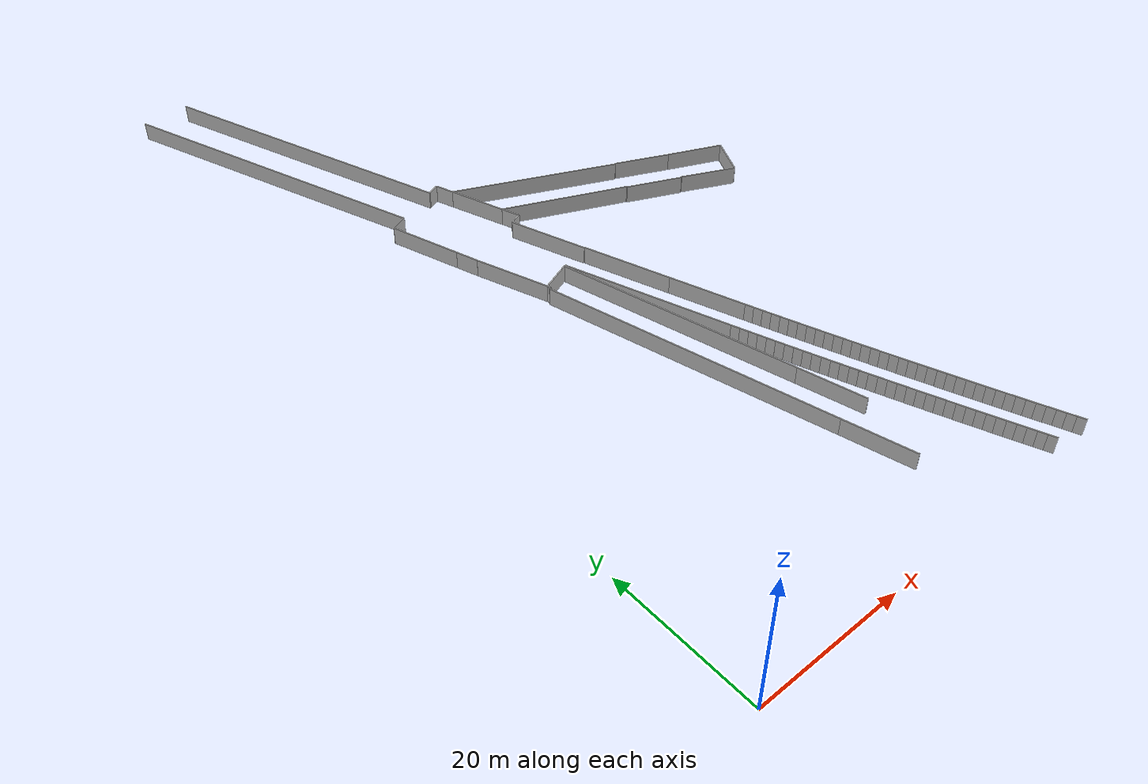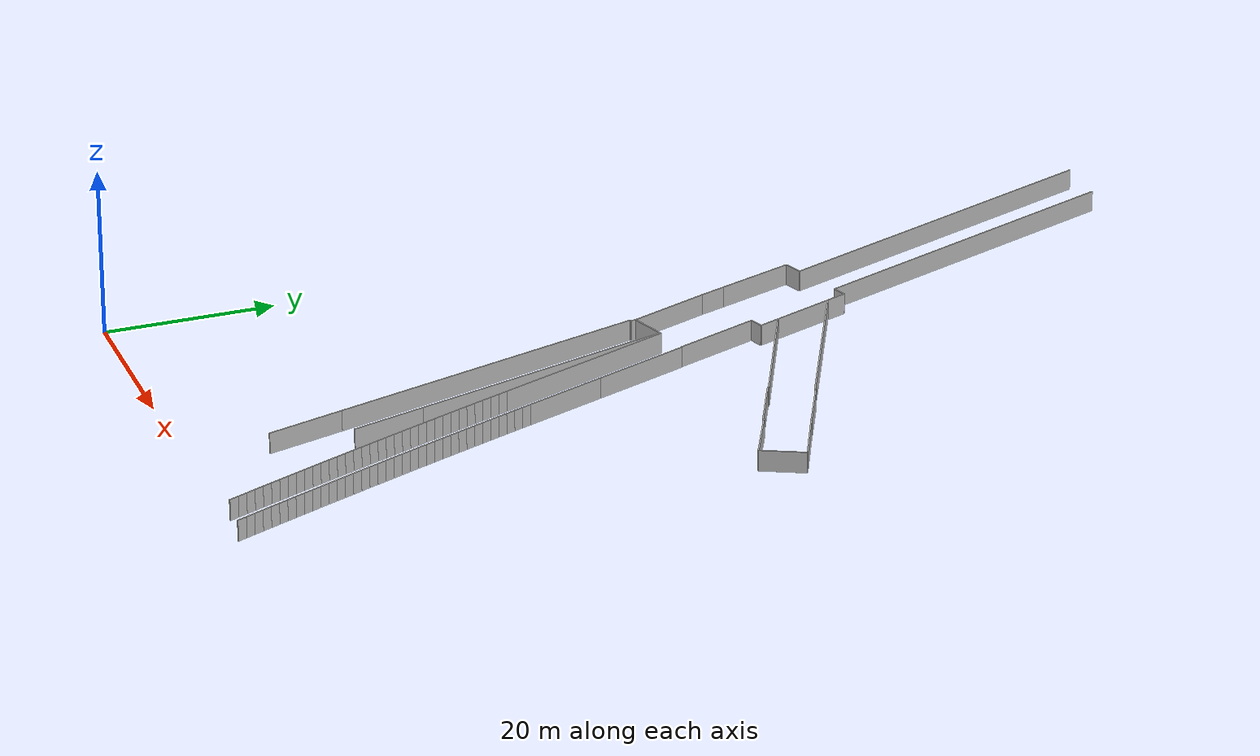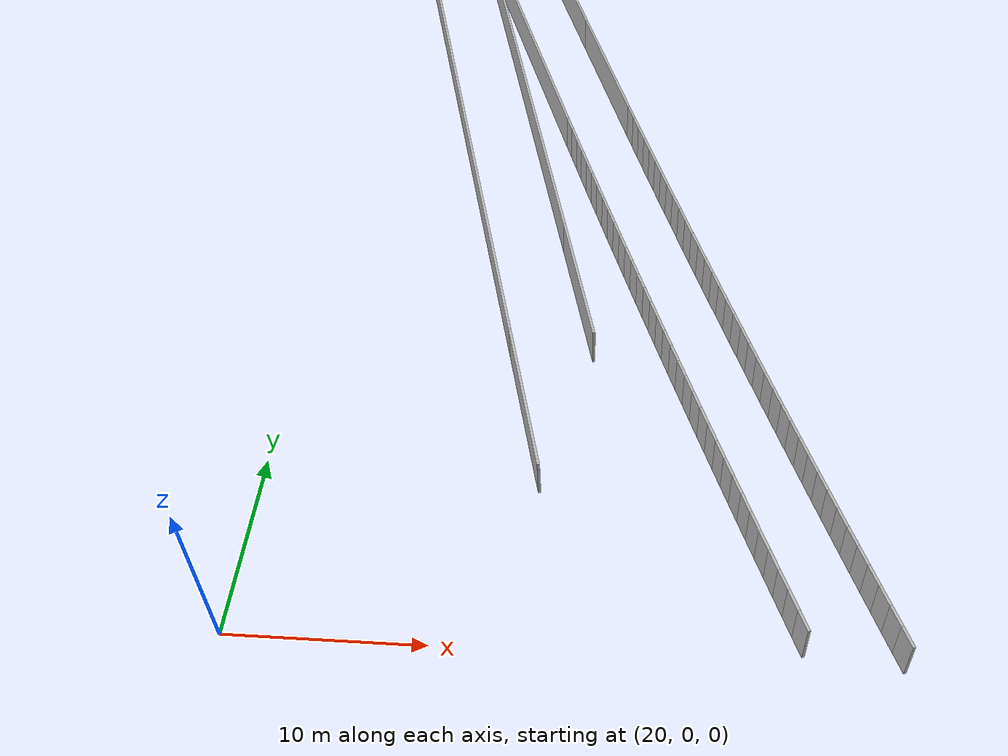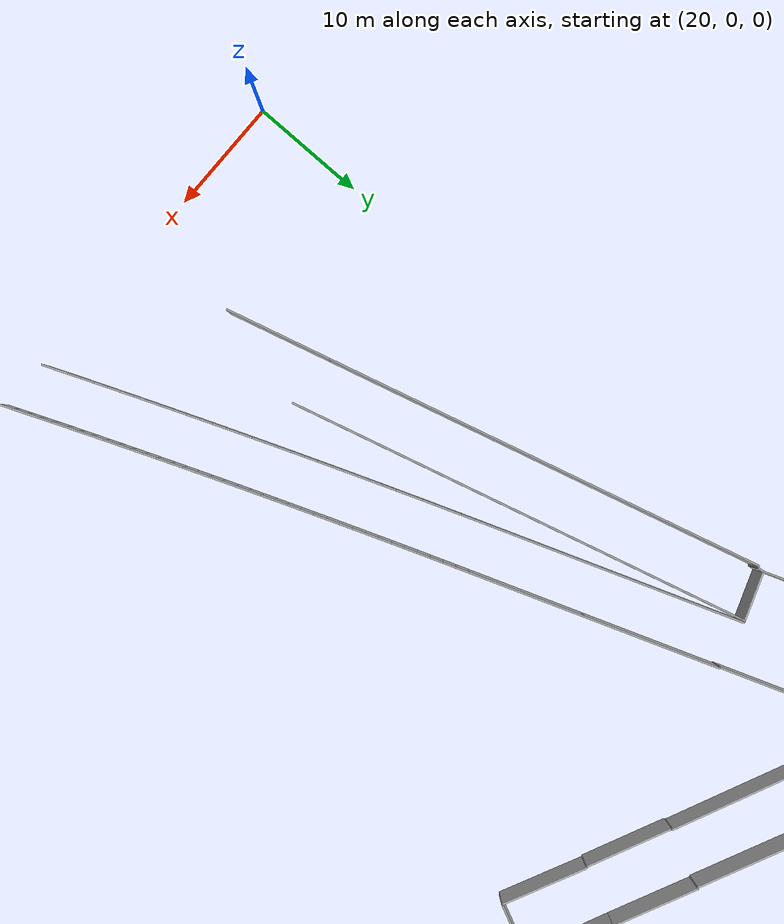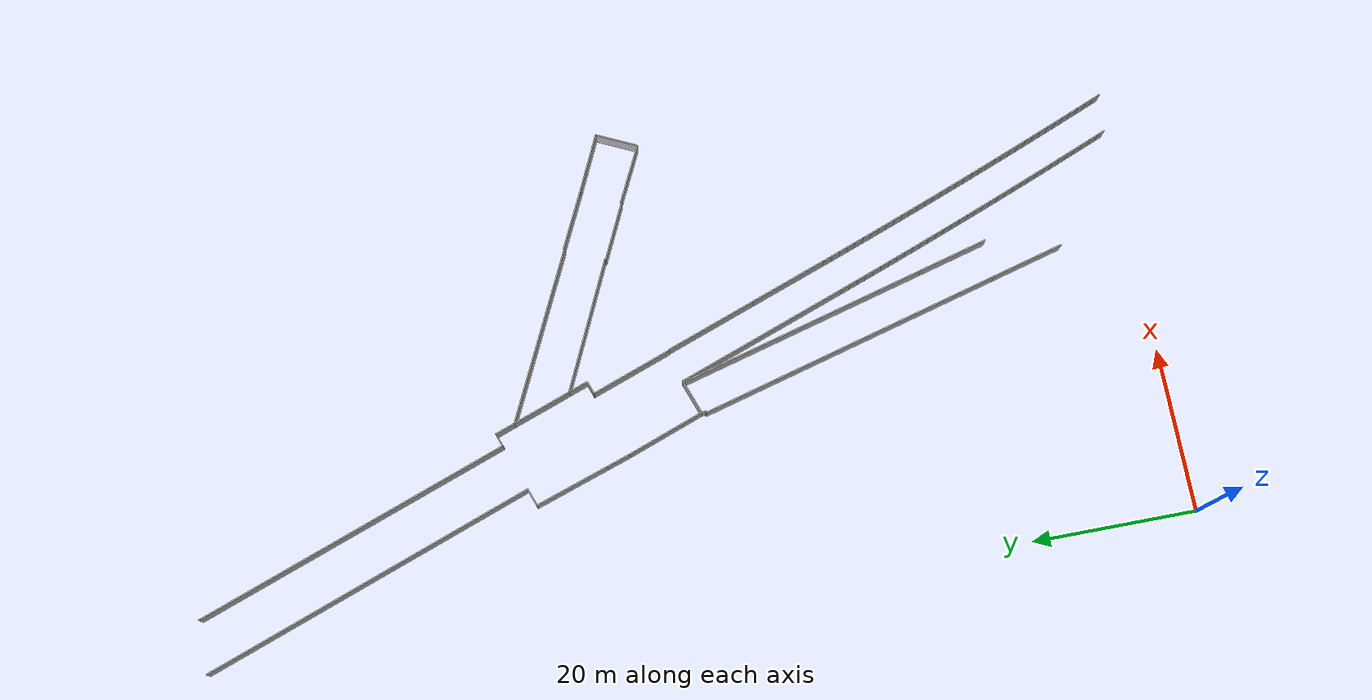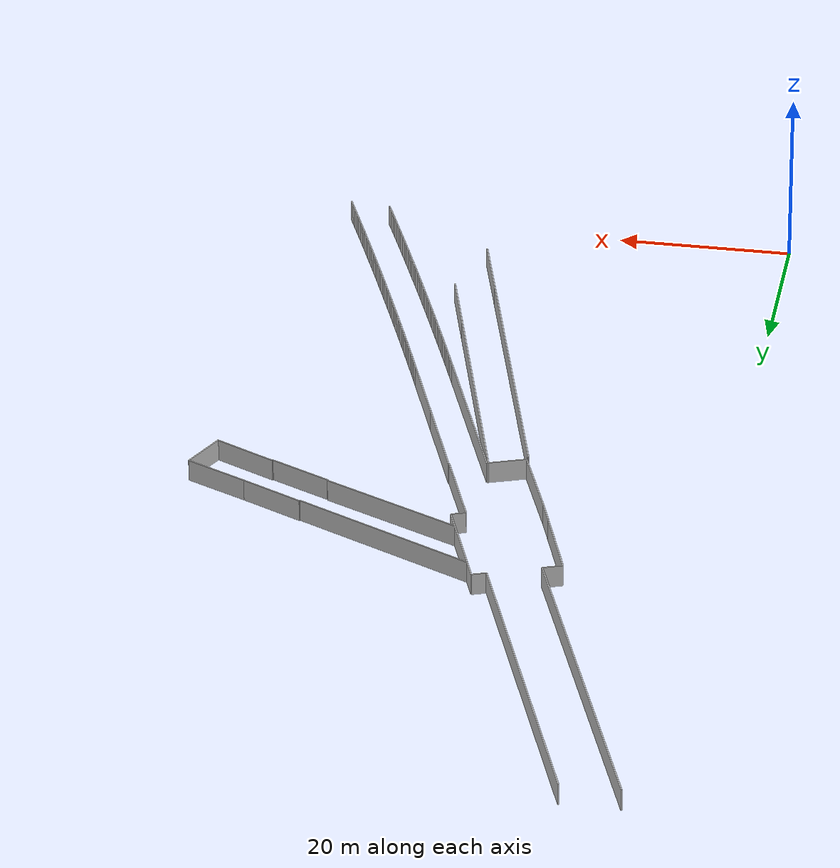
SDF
<sdf version="1.6">
 <model name="sps_0208">
  <static>1</static>
  <allow_auto_disable>0</allow_auto_disable>
  <link name="Wall0">
   <collision name="collision"><geometry><box><size>22.2248 0.15 2.5</size></box></geometry></collision>
   <visual name="visual">
    <geometry><box><size>22.2248 0.15 2.5</size></box></geometry>
    <transparency>0.0</transparency>
   </visual>
   <pose>30.1934 46.7419 1.25 0 -0 1.91495</pose>
  </link>
  <link name="Wall86">
   <collision name="collision"><geometry><box><size>0.0706437 0.15 2.5</size></box></geometry></collision>
   <visual name="visual">
    <geometry><box><size>0.0706437 0.15 2.5</size></box></geometry>
    <transparency>0.0</transparency>
   </visual>
   <pose>30.4767 58.1172 1.25 0 -0 0.355636</pose>
  </link>
  <link name="Wall87">
   <collision name="collision"><geometry><box><size>11.7364 0.15 2.5</size></box></geometry></collision>
   <visual name="visual">
    <geometry><box><size>11.7364 0.15 2.5</size></box></geometry>
    <transparency>0.0</transparency>
   </visual>
   <pose>32.4896 52.6053 1.25 0 0 -1.22667</pose>
  </link>
  <link name="Wall88">
   <collision name="collision"><geometry><box><size>9.98642 0.15 2.5</size></box></geometry></collision>
   <visual name="visual">
    <geometry><box><size>9.98642 0.15 2.5</size></box></geometry>
    <transparency>0.0</transparency>
   </visual>
   <pose>36.154 42.3808 1.25 0 0 -1.22667</pose>
  </link>
  <link name="Wall170">
   <collision name="collision"><geometry><box><size>1.64998 0.15 2.5</size></box></geometry></collision>
   <visual name="visual">
    <geometry><box><size>1.64998 0.15 2.5</size></box></geometry>
    <transparency>0.0</transparency>
   </visual>
   <pose>23.4925 79.9408 1.25 0 -0 0.343838</pose>
  </link>
  <link name="Wall171">
   <collision name="collision"><geometry><box><size>2.49963 0.15 2.5</size></box></geometry></collision>
   <visual name="visual">
    <geometry><box><size>2.49963 0.15 2.5</size></box></geometry>
    <transparency>0.0</transparency>
   </visual>
   <pose>24.6911 79.0424 1.25 0 0 -1.22654</pose>
  </link>
  <link name="Wall263">
   <collision name="collision"><geometry><box><size>2.24921 0.15 2.5</size></box></geometry></collision>
   <visual name="visual">
    <geometry><box><size>2.24921 0.15 2.5</size></box></geometry>
    <transparency>0.0</transparency>
   </visual>
   <pose>16.0085 77.2574 1.25 0 -0 0.34457</pose>
  </link>
  <link name="Wall264">
   <collision name="collision"><geometry><box><size>42.7635 0.15 2.5</size></box></geometry></collision>
   <visual name="visual">
    <geometry><box><size>42.7635 0.15 2.5</size></box></geometry>
    <transparency>0.0</transparency>
   </visual>
   <pose>9.85269 97.7652 1.25 0 -0 1.91496</pose>
  </link>
  <link name="Wall267">
   <collision name="collision"><geometry><box><size>40.6042 0.15 2.5</size></box></geometry></collision>
   <visual name="visual">
    <geometry><box><size>40.6042 0.15 2.5</size></box></geometry>
    <transparency>0.0</transparency>
   </visual>
   <pose>15.8759 98.7779 1.25 0 0 -1.22716</pose>
  </link>
  <link name="Wall268">
   <collision name="collision"><geometry><box><size>1.65028 0.15 2.5</size></box></geometry></collision>
   <visual name="visual">
    <geometry><box><size>1.65028 0.15 2.5</size></box></geometry>
    <transparency>0.0</transparency>
   </visual>
   <pose>27.7107 68.1739 1.25 0 0 -2.79692</pose>
  </link>
  <link name="Wall273">
   <collision name="collision"><geometry><box><size>8.81616 0.15 2.5</size></box></geometry></collision>
   <visual name="visual">
    <geometry><box><size>8.81616 0.15 2.5</size></box></geometry>
    <transparency>0.0</transparency>
   </visual>
   <pose>35.6053 22.1523 1.25 0 -0 1.83141</pose>
  </link>
  <link name="Wall274">
   <collision name="collision"><geometry><box><size>31.8043 0.15 2.5</size></box></geometry></collision>
   <visual name="visual">
    <geometry><box><size>31.8043 0.15 2.5</size></box></geometry>
    <transparency>0.0</transparency>
   </visual>
   <pose>30.3719 41.7767 1.25 0 -0 1.83141</pose>
  </link>
  <link name="Wall327">
   <collision name="collision"><geometry><box><size>0.00213967 0.15 2.5</size></box></geometry></collision>
   <visual name="visual">
    <geometry><box><size>0.00213967 0.15 2.5</size></box></geometry>
    <transparency>0.0</transparency>
   </visual>
   <pose>26.9344 67.8941 1.25 0 0 -1.22659</pose>
  </link>
  <link name="Wall328">
   <collision name="collision"><geometry><box><size>10.3981 0.15 2.5</size></box></geometry></collision>
   <visual name="visual">
    <geometry><box><size>10.3981 0.15 2.5</size></box></geometry>
    <transparency>0.0</transparency>
   </visual>
   <pose>28.6892 62.999 1.25 0 0 -1.22659</pose>
  </link>
  <link name="Wall332">
   <collision name="collision"><geometry><box><size>9.27059 0.15 2.5</size></box></geometry></collision>
   <visual name="visual">
    <geometry><box><size>9.27059 0.15 2.5</size></box></geometry>
    <transparency>0.0</transparency>
   </visual>
   <pose>33.2761 13.414 1.25 0 -0 1.83117</pose>
  </link>
  <link name="Wall333">
   <collision name="collision"><geometry><box><size>38.5413 0.15 2.5</size></box></geometry></collision>
   <visual name="visual">
    <geometry><box><size>38.5413 0.15 2.5</size></box></geometry>
    <transparency>0.0</transparency>
   </visual>
   <pose>27.1216 36.5142 1.25 0 -0 1.83117</pose>
  </link>
  <link name="Wall491">
   <collision name="collision"><geometry><box><size>9.47192 0.15 2.5</size></box></geometry></collision>
   <visual name="visual">
    <geometry><box><size>9.47192 0.15 2.5</size></box></geometry>
    <transparency>0.0</transparency>
   </visual>
   <pose>16.4498 72.3853 1.25 0 0 -1.24857</pose>
  </link>
  <link name="Wall492">
   <collision name="collision"><geometry><box><size>3.03054 0.15 2.5</size></box></geometry></collision>
   <visual name="visual">
    <geometry><box><size>3.03054 0.15 2.5</size></box></geometry>
    <transparency>0.0</transparency>
   </visual>
   <pose>18.4294 66.4558 1.25 0 0 -1.24857</pose>
  </link>
  <link name="Wall493">
   <collision name="collision"><geometry><box><size>0.509222 0.15 2.5</size></box></geometry></collision>
   <visual name="visual">
    <geometry><box><size>0.509222 0.15 2.5</size></box></geometry>
    <transparency>0.0</transparency>
   </visual>
   <pose>22.3109 55.4548 1.25 0 -0 1.71707</pose>
  </link>
  <link name="Wall494">
   <collision name="collision"><geometry><box><size>2.49963 0.15 2.5</size></box></geometry></collision>
   <visual name="visual">
    <geometry><box><size>2.49963 0.15 2.5</size></box></geometry>
    <transparency>0.0</transparency>
   </visual>
   <pose>28.0655 69.6292 1.25 0 0 -1.22654</pose>
  </link>
  <link name="Wall592">
   <collision name="collision"><geometry><box><size>9.90103 0.15 2.5</size></box></geometry></collision>
   <visual name="visual">
    <geometry><box><size>9.90103 0.15 2.5</size></box></geometry>
    <transparency>0.0</transparency>
   </visual>
   <pose>20.5915 60.3626 1.25 0 0 -1.22407</pose>
  </link>
  <link name="Wall593">
   <collision name="collision"><geometry><box><size>0.19938 0.15 2.5</size></box></geometry></collision>
   <visual name="visual">
    <geometry><box><size>0.19938 0.15 2.5</size></box></geometry>
    <transparency>0.0</transparency>
   </visual>
   <pose>22.2543 55.1691 1.25 0 -0 0.346051</pose>
  </link>
  <link name="Wall594">
   <collision name="collision"><geometry><box><size>0.180181 0.15 2.5</size></box></geometry></collision>
   <visual name="visual">
    <geometry><box><size>0.180181 0.15 2.5</size></box></geometry>
    <transparency>0.0</transparency>
   </visual>
   <pose>26.3592 57.1723 1.25 0 0 -2.79745</pose>
  </link>
  <link name="Wall1409">
   <collision name="collision"><geometry><box><size>7.50012 0.15 2.5</size></box></geometry></collision>
   <visual name="visual">
    <geometry><box><size>7.50012 0.15 2.5</size></box></geometry>
    <transparency>0.0</transparency>
   </visual>
   <pose>26.3783 74.3358 1.25 0 -0 1.91498</pose>
  </link>
  <link name="Wall1410">
   <collision name="collision"><geometry><box><size>22.1706 0.15 2.5</size></box></geometry></collision>
   <visual name="visual">
    <geometry><box><size>22.1706 0.15 2.5</size></box></geometry>
    <transparency>0.0</transparency>
   </visual>
   <pose>35.1147 73.086 1.25 0 0 -0.445816</pose>
  </link>
  <link name="Wall1411">
   <collision name="collision"><geometry><box><size>0.100339 0.15 2.5</size></box></geometry></collision>
   <visual name="visual">
    <geometry><box><size>0.100339 0.15 2.5</size></box></geometry>
    <transparency>0.0</transparency>
   </visual>
   <pose>45.1379 68.3515 1.25 0 -0 1.13027</pose>
  </link>
  <link name="Wall1412">
   <collision name="collision"><geometry><box><size>7.50014 0.15 2.5</size></box></geometry></collision>
   <visual name="visual">
    <geometry><box><size>7.50014 0.15 2.5</size></box></geometry>
    <transparency>0.0</transparency>
   </visual>
   <pose>48.5395 66.7729 1.25 0 0 -0.447881</pose>
  </link>
  <link name="Wall1413">
   <collision name="collision"><geometry><box><size>7.50037 0.15 2.5</size></box></geometry></collision>
   <visual name="visual">
    <geometry><box><size>7.50037 0.15 2.5</size></box></geometry>
    <transparency>0.0</transparency>
   </visual>
   <pose>55.3213 63.5702 1.25 0 0 -0.434511</pose>
  </link>
  <link name="Wall1414">
   <collision name="collision"><geometry><box><size>5.30036 0.15 2.5</size></box></geometry></collision>
   <visual name="visual">
    <geometry><box><size>5.30036 0.15 2.5</size></box></geometry>
    <transparency>0.0</transparency>
   </visual>
   <pose>57.5911 59.5952 1.25 0 0 -2.01208</pose>
  </link>
  <link name="Wall1415">
   <collision name="collision"><geometry><box><size>7.5008 0.15 2.5</size></box></geometry></collision>
   <visual name="visual">
    <geometry><box><size>7.5008 0.15 2.5</size></box></geometry>
    <transparency>0.0</transparency>
   </visual>
   <pose>53.0897 58.8455 1.25 0 -0 2.68705</pose>
  </link>
  <link name="Wall1416">
   <collision name="collision"><geometry><box><size>0.100417 0.15 2.5</size></box></geometry></collision>
   <visual name="visual">
    <geometry><box><size>0.100417 0.15 2.5</size></box></geometry>
    <transparency>0.0</transparency>
   </visual>
   <pose>49.6986 60.4467 1.25 0 0 -2.01297</pose>
  </link>
  <link name="Wall1417">
   <collision name="collision"><geometry><box><size>7.50005 0.15 2.5</size></box></geometry></collision>
   <visual name="visual">
    <geometry><box><size>7.50005 0.15 2.5</size></box></geometry>
    <transparency>0.0</transparency>
   </visual>
   <pose>46.2863 62.0029 1.25 0 -0 2.70032</pose>
  </link>
  <link name="Wall1418">
   <collision name="collision"><geometry><box><size>0.100417 0.15 2.5</size></box></geometry></collision>
   <visual name="visual">
    <geometry><box><size>0.100417 0.15 2.5</size></box></geometry>
    <transparency>0.0</transparency>
   </visual>
   <pose>42.917 63.6499 1.25 0 -0 1.12862</pose>
  </link>
  <link name="Wall1419">
   <collision name="collision"><geometry><box><size>16.8668 0.15 2.5</size></box></geometry></collision>
   <visual name="visual">
    <geometry><box><size>16.8668 0.15 2.5</size></box></geometry>
    <transparency>0.0</transparency>
   </visual>
   <pose>35.291 67.2505 1.25 0 -0 2.70642</pose>
  </link>
  <link name="Wall1912">
   <collision name="collision"><geometry><box><size>0.19938 0.15 2.5</size></box></geometry></collision>
   <visual name="visual">
    <geometry><box><size>0.19938 0.15 2.5</size></box></geometry>
    <transparency>0.0</transparency>
   </visual>
   <pose>22.2543 55.1691 1.25 0 -0 0.346051</pose>
  </link>
  <link name="Wall1913">
   <collision name="collision"><geometry><box><size>0.509222 0.15 2.5</size></box></geometry></collision>
   <visual name="visual">
    <geometry><box><size>0.509222 0.15 2.5</size></box></geometry>
    <transparency>0.0</transparency>
   </visual>
   <pose>22.3109 55.4548 1.25 0 -0 1.71707</pose>
  </link>
  <link name="Wall1914">
   <collision name="collision"><geometry><box><size>4.25027 0.15 2.5</size></box></geometry></collision>
   <visual name="visual">
    <geometry><box><size>4.25027 0.15 2.5</size></box></geometry>
    <transparency>0.0</transparency>
   </visual>
   <pose>24.2741 56.4243 1.25 0 -0 0.344454</pose>
  </link>
  <link name="Wall4749">
   <collision name="collision"><geometry><box><size>1.12145 0.15 2.5</size></box></geometry></collision>
   <visual name="visual">
    <geometry><box><size>1.12145 0.15 2.5</size></box></geometry>
    <transparency>0.0</transparency>
   </visual>
   <pose>38.0285 37.1527 1.25 0 0 -1.22545</pose>
  </link>
  <link name="Wall4750">
   <collision name="collision"><geometry><box><size>1.1215 0.15 2.5</size></box></geometry></collision>
   <visual name="visual">
    <geometry><box><size>1.1215 0.15 2.5</size></box></geometry>
    <transparency>0.0</transparency>
   </visual>
   <pose>38.4088 36.0977 1.25 0 0 -1.22419</pose>
  </link>
  <link name="Wall4751">
   <collision name="collision"><geometry><box><size>1.12128 0.15 2.5</size></box></geometry></collision>
   <visual name="visual">
    <geometry><box><size>1.12128 0.15 2.5</size></box></geometry>
    <transparency>0.0</transparency>
   </visual>
   <pose>38.7903 35.0432 1.25 0 0 -1.22314</pose>
  </link>
  <link name="Wall4752">
   <collision name="collision"><geometry><box><size>1.1214 0.15 2.5</size></box></geometry></collision>
   <visual name="visual">
    <geometry><box><size>1.1214 0.15 2.5</size></box></geometry>
    <transparency>0.0</transparency>
   </visual>
   <pose>39.1731 33.9892 1.25 0 0 -1.22173</pose>
  </link>
  <link name="Wall4753">
   <collision name="collision"><geometry><box><size>1.12143 0.15 2.5</size></box></geometry></collision>
   <visual name="visual">
    <geometry><box><size>1.12143 0.15 2.5</size></box></geometry>
    <transparency>0.0</transparency>
   </visual>
   <pose>39.5572 32.9356 1.25 0 0 -1.2207</pose>
  </link>
  <link name="Wall4754">
   <collision name="collision"><geometry><box><size>1.12126 0.15 2.5</size></box></geometry></collision>
   <visual name="visual">
    <geometry><box><size>1.12126 0.15 2.5</size></box></geometry>
    <transparency>0.0</transparency>
   </visual>
   <pose>39.9424 31.8825 1.25 0 0 -1.21954</pose>
  </link>
  <link name="Wall4755">
   <collision name="collision"><geometry><box><size>1.1214 0.15 2.5</size></box></geometry></collision>
   <visual name="visual">
    <geometry><box><size>1.1214 0.15 2.5</size></box></geometry>
    <transparency>0.0</transparency>
   </visual>
   <pose>40.3289 30.8299 1.25 0 0 -1.21825</pose>
  </link>
  <link name="Wall4756">
   <collision name="collision"><geometry><box><size>1.12134 0.15 2.5</size></box></geometry></collision>
   <visual name="visual">
    <geometry><box><size>1.12134 0.15 2.5</size></box></geometry>
    <transparency>0.0</transparency>
   </visual>
   <pose>40.7167 29.7777 1.25 0 0 -1.21713</pose>
  </link>
  <link name="Wall4757">
   <collision name="collision"><geometry><box><size>1.12131 0.15 2.5</size></box></geometry></collision>
   <visual name="visual">
    <geometry><box><size>1.12131 0.15 2.5</size></box></geometry>
    <transparency>0.0</transparency>
   </visual>
   <pose>41.1056 28.726 1.25 0 0 -1.21596</pose>
  </link>
  <link name="Wall4758">
   <collision name="collision"><geometry><box><size>1.12127 0.15 2.5</size></box></geometry></collision>
   <visual name="visual">
    <geometry><box><size>1.12127 0.15 2.5</size></box></geometry>
    <transparency>0.0</transparency>
   </visual>
   <pose>41.4958 27.6748 1.25 0 0 -1.21478</pose>
  </link>
  <link name="Wall4759">
   <collision name="collision"><geometry><box><size>1.12142 0.15 2.5</size></box></geometry></collision>
   <visual name="visual">
    <geometry><box><size>1.12142 0.15 2.5</size></box></geometry>
    <transparency>0.0</transparency>
   </visual>
   <pose>41.8874 26.624 1.25 0 0 -1.2135</pose>
  </link>
  <link name="Wall4760">
   <collision name="collision"><geometry><box><size>1.12148 0.15 2.5</size></box></geometry></collision>
   <visual name="visual">
    <geometry><box><size>1.12148 0.15 2.5</size></box></geometry>
    <transparency>0.0</transparency>
   </visual>
   <pose>42.2801 25.5736 1.25 0 0 -1.21241</pose>
  </link>
  <link name="Wall4761">
   <collision name="collision"><geometry><box><size>1.12154 0.15 2.5</size></box></geometry></collision>
   <visual name="visual">
    <geometry><box><size>1.12154 0.15 2.5</size></box></geometry>
    <transparency>0.0</transparency>
   </visual>
   <pose>42.6742 24.5236 1.25 0 0 -1.21121</pose>
  </link>
  <link name="Wall4762">
   <collision name="collision"><geometry><box><size>1.12135 0.15 2.5</size></box></geometry></collision>
   <visual name="visual">
    <geometry><box><size>1.12135 0.15 2.5</size></box></geometry>
    <transparency>0.0</transparency>
   </visual>
   <pose>43.0694 23.4741 1.25 0 0 -1.2101</pose>
  </link>
  <link name="Wall4763">
   <collision name="collision"><geometry><box><size>1.1213 0.15 2.5</size></box></geometry></collision>
   <visual name="visual">
    <geometry><box><size>1.1213 0.15 2.5</size></box></geometry>
    <transparency>0.0</transparency>
   </visual>
   <pose>43.4658 22.4252 1.25 0 0 -1.20869</pose>
  </link>
  <link name="Wall4764">
   <collision name="collision"><geometry><box><size>1.12147 0.15 2.5</size></box></geometry></collision>
   <visual name="visual">
    <geometry><box><size>1.12147 0.15 2.5</size></box></geometry>
    <transparency>0.0</transparency>
   </visual>
   <pose>43.8635 21.3767 1.25 0 0 -1.20782</pose>
  </link>
  <link name="Wall4765">
   <collision name="collision"><geometry><box><size>1.12132 0.15 2.5</size></box></geometry></collision>
   <visual name="visual">
    <geometry><box><size>1.12132 0.15 2.5</size></box></geometry>
    <transparency>0.0</transparency>
   </visual>
   <pose>44.2626 20.3287 1.25 0 0 -1.20619</pose>
  </link>
  <link name="Wall4766">
   <collision name="collision"><geometry><box><size>1.12142 0.15 2.5</size></box></geometry></collision>
   <visual name="visual">
    <geometry><box><size>1.12142 0.15 2.5</size></box></geometry>
    <transparency>0.0</transparency>
   </visual>
   <pose>44.6629 19.2812 1.25 0 0 -1.20535</pose>
  </link>
  <link name="Wall4767">
   <collision name="collision"><geometry><box><size>1.12143 0.15 2.5</size></box></geometry></collision>
   <visual name="visual">
    <geometry><box><size>1.12143 0.15 2.5</size></box></geometry>
    <transparency>0.0</transparency>
   </visual>
   <pose>45.0644 18.2341 1.25 0 0 -1.20395</pose>
  </link>
  <link name="Wall4768">
   <collision name="collision"><geometry><box><size>1.12145 0.15 2.5</size></box></geometry></collision>
   <visual name="visual">
    <geometry><box><size>1.12145 0.15 2.5</size></box></geometry>
    <transparency>0.0</transparency>
   </visual>
   <pose>45.4672 17.1875 1.25 0 0 -1.20285</pose>
  </link>
  <link name="Wall4769">
   <collision name="collision"><geometry><box><size>1.12137 0.15 2.5</size></box></geometry></collision>
   <visual name="visual">
    <geometry><box><size>1.12137 0.15 2.5</size></box></geometry>
    <transparency>0.0</transparency>
   </visual>
   <pose>45.8711 16.1414 1.25 0 0 -1.20166</pose>
  </link>
  <link name="Wall4770">
   <collision name="collision"><geometry><box><size>1.12142 0.15 2.5</size></box></geometry></collision>
   <visual name="visual">
    <geometry><box><size>1.12142 0.15 2.5</size></box></geometry>
    <transparency>0.0</transparency>
   </visual>
   <pose>46.2764 15.0958 1.25 0 0 -1.20051</pose>
  </link>
  <link name="Wall4771">
   <collision name="collision"><geometry><box><size>1.12127 0.15 2.5</size></box></geometry></collision>
   <visual name="visual">
    <geometry><box><size>1.12127 0.15 2.5</size></box></geometry>
    <transparency>0.0</transparency>
   </visual>
   <pose>46.6828 14.0507 1.25 0 0 -1.19935</pose>
  </link>
  <link name="Wall4772">
   <collision name="collision"><geometry><box><size>1.12138 0.15 2.5</size></box></geometry></collision>
   <visual name="visual">
    <geometry><box><size>1.12138 0.15 2.5</size></box></geometry>
    <transparency>0.0</transparency>
   </visual>
   <pose>47.0904 13.0061 1.25 0 0 -1.19804</pose>
  </link>
  <link name="Wall4773">
   <collision name="collision"><geometry><box><size>1.12125 0.15 2.5</size></box></geometry></collision>
   <visual name="visual">
    <geometry><box><size>1.12125 0.15 2.5</size></box></geometry>
    <transparency>0.0</transparency>
   </visual>
   <pose>47.4994 11.962 1.25 0 0 -1.197</pose>
  </link>
  <link name="Wall4774">
   <collision name="collision"><geometry><box><size>1.12134 0.15 2.5</size></box></geometry></collision>
   <visual name="visual">
    <geometry><box><size>1.12134 0.15 2.5</size></box></geometry>
    <transparency>0.0</transparency>
   </visual>
   <pose>47.9094 10.9184 1.25 0 0 -1.19575</pose>
  </link>
  <link name="Wall4775">
   <collision name="collision"><geometry><box><size>1.12141 0.15 2.5</size></box></geometry></collision>
   <visual name="visual">
    <geometry><box><size>1.12141 0.15 2.5</size></box></geometry>
    <transparency>0.0</transparency>
   </visual>
   <pose>48.3209 9.8752 1.25 0 0 -1.19454</pose>
  </link>
  <link name="Wall4776">
   <collision name="collision"><geometry><box><size>1.1215 0.15 2.5</size></box></geometry></collision>
   <visual name="visual">
    <geometry><box><size>1.1215 0.15 2.5</size></box></geometry>
    <transparency>0.0</transparency>
   </visual>
   <pose>48.7335 8.83241 1.25 0 0 -1.19346</pose>
  </link>
  <link name="Wall4777">
   <collision name="collision"><geometry><box><size>1.12143 0.15 2.5</size></box></geometry></collision>
   <visual name="visual">
    <geometry><box><size>1.12143 0.15 2.5</size></box></geometry>
    <transparency>0.0</transparency>
   </visual>
   <pose>49.1474 7.79011 1.25 0 0 -1.19215</pose>
  </link>
  <link name="Wall4778">
   <collision name="collision"><geometry><box><size>1.12139 0.15 2.5</size></box></geometry></collision>
   <visual name="visual">
    <geometry><box><size>1.12139 0.15 2.5</size></box></geometry>
    <transparency>0.0</transparency>
   </visual>
   <pose>49.5626 6.7484 1.25 0 0 -1.19091</pose>
  </link>
  <link name="Wall4779">
   <collision name="collision"><geometry><box><size>1.12137 0.15 2.5</size></box></geometry></collision>
   <visual name="visual">
    <geometry><box><size>1.12137 0.15 2.5</size></box></geometry>
    <transparency>0.0</transparency>
   </visual>
   <pose>49.979 5.7072 1.25 0 0 -1.18978</pose>
  </link>
  <link name="Wall4780">
   <collision name="collision"><geometry><box><size>1.12131 0.15 2.5</size></box></geometry></collision>
   <visual name="visual">
    <geometry><box><size>1.12131 0.15 2.5</size></box></geometry>
    <transparency>0.0</transparency>
   </visual>
   <pose>50.3966 4.66652 1.25 0 0 -1.18859</pose>
  </link>
  <link name="Wall4781">
   <collision name="collision"><geometry><box><size>1.12141 0.15 2.5</size></box></geometry></collision>
   <visual name="visual">
    <geometry><box><size>1.12141 0.15 2.5</size></box></geometry>
    <transparency>0.0</transparency>
   </visual>
   <pose>50.8154 3.6263 1.25 0 0 -1.18751</pose>
  </link>
  <link name="Wall4782">
   <collision name="collision"><geometry><box><size>1.12124 0.15 2.5</size></box></geometry></collision>
   <visual name="visual">
    <geometry><box><size>1.12124 0.15 2.5</size></box></geometry>
    <transparency>0.0</transparency>
   </visual>
   <pose>51.2353 2.58659 1.25 0 0 -1.18628</pose>
  </link>
  <link name="Wall4783">
   <collision name="collision"><geometry><box><size>1.12143 0.15 2.5</size></box></geometry></collision>
   <visual name="visual">
    <geometry><box><size>1.12143 0.15 2.5</size></box></geometry>
    <transparency>0.0</transparency>
   </visual>
   <pose>51.6566 1.54741 1.25 0 0 -1.18499</pose>
  </link>
  <link name="Wall4784">
   <collision name="collision"><geometry><box><size>1.12126 0.15 2.5</size></box></geometry></collision>
   <visual name="visual">
    <geometry><box><size>1.12126 0.15 2.5</size></box></geometry>
    <transparency>0.0</transparency>
   </visual>
   <pose>52.0792 0.508712 1.25 0 0 -1.18393</pose>
  </link>
  <link name="Wall9337">
   <collision name="collision"><geometry><box><size>1.12636 0.15 2.5</size></box></geometry></collision>
   <visual name="visual">
    <geometry><box><size>1.12636 0.15 2.5</size></box></geometry>
    <transparency>0.0</transparency>
   </visual>
   <pose>34.1334 35.7512 1.25 0 0 -1.22534</pose>
  </link>
  <link name="Wall9338">
   <collision name="collision"><geometry><box><size>1.12626 0.15 2.5</size></box></geometry></collision>
   <visual name="visual">
    <geometry><box><size>1.12626 0.15 2.5</size></box></geometry>
    <transparency>0.0</transparency>
   </visual>
   <pose>34.5155 34.6917 1.25 0 0 -1.22399</pose>
  </link>
  <link name="Wall9339">
   <collision name="collision"><geometry><box><size>1.12625 0.15 2.5</size></box></geometry></collision>
   <visual name="visual">
    <geometry><box><size>1.12625 0.15 2.5</size></box></geometry>
    <transparency>0.0</transparency>
   </visual>
   <pose>34.8989 33.6327 1.25 0 0 -1.22289</pose>
  </link>
  <link name="Wall9340">
   <collision name="collision"><geometry><box><size>1.12626 0.15 2.5</size></box></geometry></collision>
   <visual name="visual">
    <geometry><box><size>1.12626 0.15 2.5</size></box></geometry>
    <transparency>0.0</transparency>
   </visual>
   <pose>35.2833 32.5741 1.25 0 0 -1.22191</pose>
  </link>
  <link name="Wall9341">
   <collision name="collision"><geometry><box><size>1.12651 0.15 2.5</size></box></geometry></collision>
   <visual name="visual">
    <geometry><box><size>1.12651 0.15 2.5</size></box></geometry>
    <transparency>0.0</transparency>
   </visual>
   <pose>35.6691 31.5158 1.25 0 0 -1.22067</pose>
  </link>
  <link name="Wall9342">
   <collision name="collision"><geometry><box><size>1.1264 0.15 2.5</size></box></geometry></collision>
   <visual name="visual">
    <geometry><box><size>1.1264 0.15 2.5</size></box></geometry>
    <transparency>0.0</transparency>
   </visual>
   <pose>36.0561 30.4579 1.25 0 0 -1.21953</pose>
  </link>
  <link name="Wall9343">
   <collision name="collision"><geometry><box><size>1.12624 0.15 2.5</size></box></geometry></collision>
   <visual name="visual">
    <geometry><box><size>1.12624 0.15 2.5</size></box></geometry>
    <transparency>0.0</transparency>
   </visual>
   <pose>36.4442 29.4006 1.25 0 0 -1.21833</pose>
  </link>
  <link name="Wall9344">
   <collision name="collision"><geometry><box><size>1.12626 0.15 2.5</size></box></geometry></collision>
   <visual name="visual">
    <geometry><box><size>1.12626 0.15 2.5</size></box></geometry>
    <transparency>0.0</transparency>
   </visual>
   <pose>36.8336 28.3438 1.25 0 0 -1.21718</pose>
  </link>
  <link name="Wall9345">
   <collision name="collision"><geometry><box><size>1.12624 0.15 2.5</size></box></geometry></collision>
   <visual name="visual">
    <geometry><box><size>1.12624 0.15 2.5</size></box></geometry>
    <transparency>0.0</transparency>
   </visual>
   <pose>37.2244 27.2875 1.25 0 0 -1.21584</pose>
  </link>
  <link name="Wall9346">
   <collision name="collision"><geometry><box><size>1.12624 0.15 2.5</size></box></geometry></collision>
   <visual name="visual">
    <geometry><box><size>1.12624 0.15 2.5</size></box></geometry>
    <transparency>0.0</transparency>
   </visual>
   <pose>37.6164 26.2317 1.25 0 0 -1.21475</pose>
  </link>
  <link name="Wall9347">
   <collision name="collision"><geometry><box><size>1.12644 0.15 2.5</size></box></geometry></collision>
   <visual name="visual">
    <geometry><box><size>1.12644 0.15 2.5</size></box></geometry>
    <transparency>0.0</transparency>
   </visual>
   <pose>38.0095 25.1762 1.25 0 0 -1.21366</pose>
  </link>
  <link name="Wall9348">
   <collision name="collision"><geometry><box><size>1.12641 0.15 2.5</size></box></geometry></collision>
   <visual name="visual">
    <geometry><box><size>1.12641 0.15 2.5</size></box></geometry>
    <transparency>0.0</transparency>
   </visual>
   <pose>38.404 24.1211 1.25 0 0 -1.21232</pose>
  </link>
  <link name="Wall9349">
   <collision name="collision"><geometry><box><size>1.12627 0.15 2.5</size></box></geometry></collision>
   <visual name="visual">
    <geometry><box><size>1.12627 0.15 2.5</size></box></geometry>
    <transparency>0.0</transparency>
   </visual>
   <pose>38.7999 23.0666 1.25 0 0 -1.21111</pose>
  </link>
  <link name="Wall9350">
   <collision name="collision"><geometry><box><size>1.12634 0.15 2.5</size></box></geometry></collision>
   <visual name="visual">
    <geometry><box><size>1.12634 0.15 2.5</size></box></geometry>
    <transparency>0.0</transparency>
   </visual>
   <pose>39.1969 22.0126 1.25 0 0 -1.21003</pose>
  </link>
  <link name="Wall9351">
   <collision name="collision"><geometry><box><size>1.12614 0.15 2.5</size></box></geometry></collision>
   <visual name="visual">
    <geometry><box><size>1.12614 0.15 2.5</size></box></geometry>
    <transparency>0.0</transparency>
   </visual>
   <pose>39.5951 20.9591 1.25 0 0 -1.20881</pose>
  </link>
  <link name="Wall9352">
   <collision name="collision"><geometry><box><size>1.12652 0.15 2.5</size></box></geometry></collision>
   <visual name="visual">
    <geometry><box><size>1.12652 0.15 2.5</size></box></geometry>
    <transparency>0.0</transparency>
   </visual>
   <pose>39.9946 19.906 1.25 0 0 -1.20761</pose>
  </link>
  <link name="Wall9353">
   <collision name="collision"><geometry><box><size>1.12614 0.15 2.5</size></box></geometry></collision>
   <visual name="visual">
    <geometry><box><size>1.12614 0.15 2.5</size></box></geometry>
    <transparency>0.0</transparency>
   </visual>
   <pose>40.3953 18.8534 1.25 0 0 -1.20637</pose>
  </link>
  <link name="Wall9354">
   <collision name="collision"><geometry><box><size>1.12643 0.15 2.5</size></box></geometry></collision>
   <visual name="visual">
    <geometry><box><size>1.12643 0.15 2.5</size></box></geometry>
    <transparency>0.0</transparency>
   </visual>
   <pose>40.7974 17.8013 1.25 0 0 -1.20525</pose>
  </link>
  <link name="Wall9355">
   <collision name="collision"><geometry><box><size>1.12625 0.15 2.5</size></box></geometry></collision>
   <visual name="visual">
    <geometry><box><size>1.12625 0.15 2.5</size></box></geometry>
    <transparency>0.0</transparency>
   </visual>
   <pose>41.2006 16.7496 1.25 0 0 -1.20415</pose>
  </link>
  <link name="Wall9356">
   <collision name="collision"><geometry><box><size>1.12621 0.15 2.5</size></box></geometry></collision>
   <visual name="visual">
    <geometry><box><size>1.12621 0.15 2.5</size></box></geometry>
    <transparency>0.0</transparency>
   </visual>
   <pose>41.605 15.6985 1.25 0 0 -1.20274</pose>
  </link>
  <link name="Wall9357">
   <collision name="collision"><geometry><box><size>1.1263 0.15 2.5</size></box></geometry></collision>
   <visual name="visual">
    <geometry><box><size>1.1263 0.15 2.5</size></box></geometry>
    <transparency>0.0</transparency>
   </visual>
   <pose>42.0109 14.6479 1.25 0 0 -1.20161</pose>
  </link>
  <link name="Wall9358">
   <collision name="collision"><geometry><box><size>1.12632 0.15 2.5</size></box></geometry></collision>
   <visual name="visual">
    <geometry><box><size>1.12632 0.15 2.5</size></box></geometry>
    <transparency>0.0</transparency>
   </visual>
   <pose>42.4179 13.5977 1.25 0 0 -1.20051</pose>
  </link>
  <link name="Wall9359">
   <collision name="collision"><geometry><box><size>1.12625 0.15 2.5</size></box></geometry></collision>
   <visual name="visual">
    <geometry><box><size>1.12625 0.15 2.5</size></box></geometry>
    <transparency>0.0</transparency>
   </visual>
   <pose>42.8261 12.548 1.25 0 0 -1.19933</pose>
  </link>
  <link name="Wall9360">
   <collision name="collision"><geometry><box><size>1.12645 0.15 2.5</size></box></geometry></collision>
   <visual name="visual">
    <geometry><box><size>1.12645 0.15 2.5</size></box></geometry>
    <transparency>0.0</transparency>
   </visual>
   <pose>43.2355 11.4987 1.25 0 0 -1.19829</pose>
  </link>
  <link name="Wall9361">
   <collision name="collision"><geometry><box><size>1.12622 0.15 2.5</size></box></geometry></collision>
   <visual name="visual">
    <geometry><box><size>1.12622 0.15 2.5</size></box></geometry>
    <transparency>0.0</transparency>
   </visual>
   <pose>43.6461 10.4499 1.25 0 0 -1.19687</pose>
  </link>
  <link name="Wall9362">
   <collision name="collision"><geometry><box><size>1.12627 0.15 2.5</size></box></geometry></collision>
   <visual name="visual">
    <geometry><box><size>1.12627 0.15 2.5</size></box></geometry>
    <transparency>0.0</transparency>
   </visual>
   <pose>44.0581 9.40169 1.25 0 0 -1.19572</pose>
  </link>
  <link name="Wall9363">
   <collision name="collision"><geometry><box><size>1.12621 0.15 2.5</size></box></geometry></collision>
   <visual name="visual">
    <geometry><box><size>1.12621 0.15 2.5</size></box></geometry>
    <transparency>0.0</transparency>
   </visual>
   <pose>44.4713 8.35399 1.25 0 0 -1.19454</pose>
  </link>
  <link name="Wall9364">
   <collision name="collision"><geometry><box><size>1.12626 0.15 2.5</size></box></geometry></collision>
   <visual name="visual">
    <geometry><box><size>1.12626 0.15 2.5</size></box></geometry>
    <transparency>0.0</transparency>
   </visual>
   <pose>44.8858 7.30678 1.25 0 0 -1.19339</pose>
  </link>
  <link name="Wall9365">
   <collision name="collision"><geometry><box><size>1.12636 0.15 2.5</size></box></geometry></collision>
   <visual name="visual">
    <geometry><box><size>1.12636 0.15 2.5</size></box></geometry>
    <transparency>0.0</transparency>
   </visual>
   <pose>45.3015 6.25999 1.25 0 0 -1.19214</pose>
  </link>
  <link name="Wall9366">
   <collision name="collision"><geometry><box><size>1.1263 0.15 2.5</size></box></geometry></collision>
   <visual name="visual">
    <geometry><box><size>1.1263 0.15 2.5</size></box></geometry>
    <transparency>0.0</transparency>
   </visual>
   <pose>45.7185 5.2137 1.25 0 0 -1.19095</pose>
  </link>
  <link name="Wall9367">
   <collision name="collision"><geometry><box><size>1.12633 0.15 2.5</size></box></geometry></collision>
   <visual name="visual">
    <geometry><box><size>1.12633 0.15 2.5</size></box></geometry>
    <transparency>0.0</transparency>
   </visual>
   <pose>46.1366 4.16789 1.25 0 0 -1.18986</pose>
  </link>
  <link name="Wall9368">
   <collision name="collision"><geometry><box><size>1.12615 0.15 2.5</size></box></geometry></collision>
   <visual name="visual">
    <geometry><box><size>1.12615 0.15 2.5</size></box></geometry>
    <transparency>0.0</transparency>
   </visual>
   <pose>46.5559 3.1226 1.25 0 0 -1.1888</pose>
  </link>
  <link name="Wall9369">
   <collision name="collision"><geometry><box><size>1.12617 0.15 2.5</size></box></geometry></collision>
   <visual name="visual">
    <geometry><box><size>1.12617 0.15 2.5</size></box></geometry>
    <transparency>0.0</transparency>
   </visual>
   <pose>46.9764 2.0779 1.25 0 0 -1.18746</pose>
  </link>
  <link name="Wall9370">
   <collision name="collision"><geometry><box><size>1.12647 0.15 2.5</size></box></geometry></collision>
   <visual name="visual">
    <geometry><box><size>1.12647 0.15 2.5</size></box></geometry>
    <transparency>0.0</transparency>
   </visual>
   <pose>47.3983 1.03358 1.25 0 0 -1.18623</pose>
  </link>
 </model>
</sdf>
